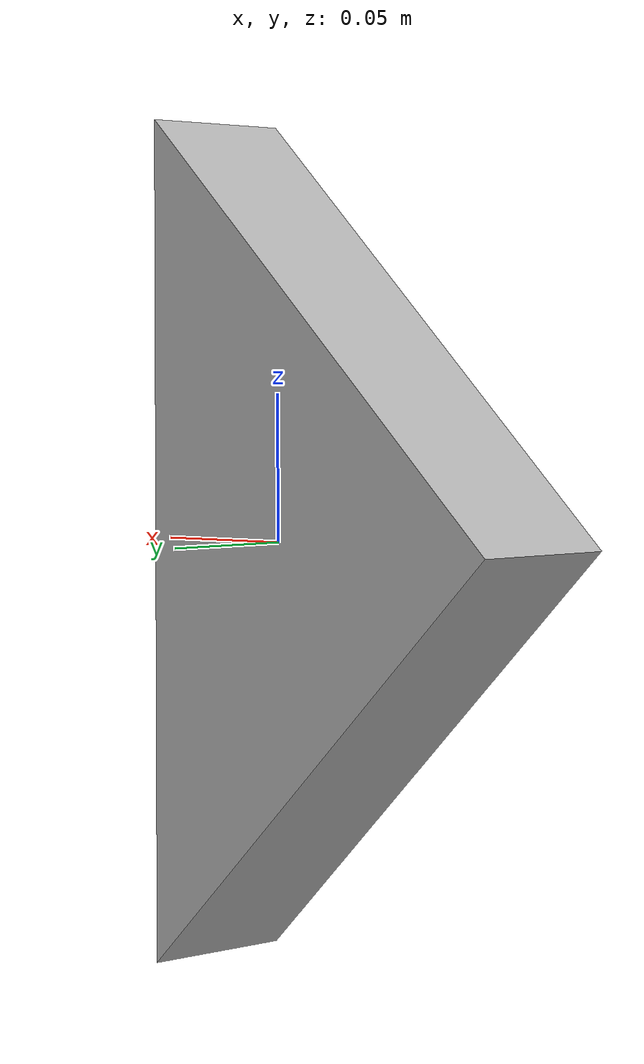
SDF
<?xml version="1.0"?>

<sdf version="1.6">
  <model name='triangle_shape'>
    <static>true</static>
    <link name="body">
      <pose>0 0 0 0 0 0</pose>

        <visual name="visual">
          <geometry>
            <mesh><uri>model://triangle_shape/meshes/triangle_shape.obj</uri></mesh>
          </geometry>
        </visual>

        <collision name="collision">
          <geometry>
            <mesh><uri>model://triangle_shape/meshes/triangle_shape.obj</uri></mesh>
          </geometry>
        </collision>

    </link>
  </model>
</sdf>
